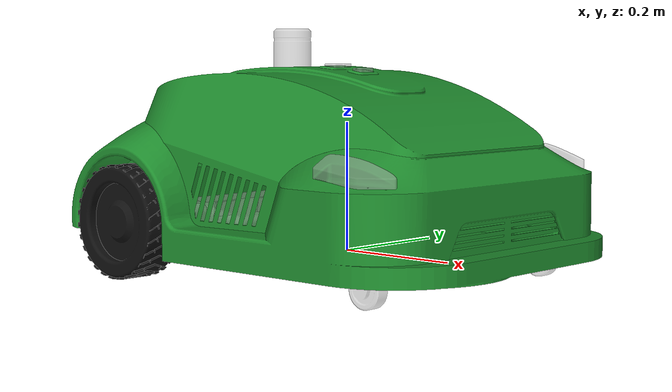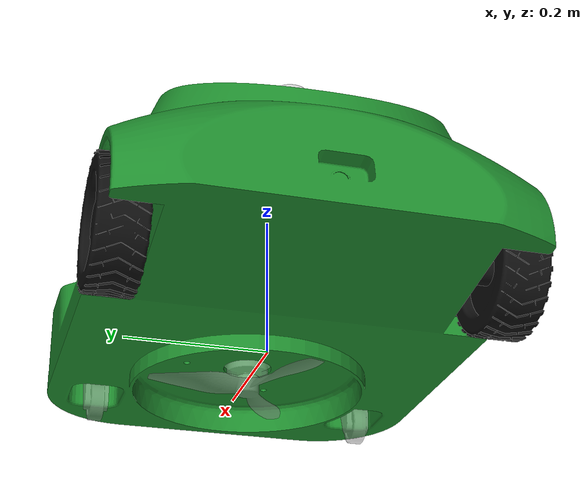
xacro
<?xml version="1.0" ?>
<robot name="Robotic" xmlns:xacro="http://www.ros.org/wiki/xacro">

<xacro:include filename="$(find lawnmover)/urdf/materials.xacro" />
<xacro:include filename="$(find lawnmover)/urdf/Robotic.ros2control" />
<xacro:include filename="$(find lawnmover)/urdf/Robotic.gazebo" />

<link name="base_footprint"/>

<!-- Align ROS forward (+X) with the physical front of the CAD model. -->
<joint name="base_footprint_to_base_link" type="fixed">
  <origin xyz="0 0 0" rpy="0 0 1.57079632679"/>
  <parent link="base_footprint"/>
  <child link="base_link"/>
</joint>

<link name="base_link">
  <inertial>
    <origin xyz="8.580581248920662e-06 -0.019542907387817107 0.03658552092693562" rpy="0 0 0"/>
    <mass value="34.93508217588316"/>
    <inertia ixx="1.904747" iyy="1.007743" izz="2.764873" ixy="5.3e-05" iyz="-0.091706" ixz="-2.9e-05"/>
  </inertial>
  <visual>
    <origin xyz="0 0 0" rpy="0 0 0"/>
    <geometry>
      <mesh filename="file://$(find lawnmover)/meshes/base_link.stl" scale="0.001 0.001 0.001"/>
    </geometry>
    <material name="chassis_green"/>
  </visual>
  <collision>
    <origin xyz="0 0 0" rpy="0 0 0"/>
    <geometry>
      <mesh filename="file://$(find lawnmover)/meshes/base_link.stl" scale="0.001 0.001 0.001"/>
    </geometry>
  </collision>
</link>

<link name="top_body_1">
  <inertial>
    <origin xyz="0.017654980692551753 0.30786706240030465 0.06037211225105721" rpy="0 0 0"/>
    <mass value="9.919977078705204"/>
    <inertia ixx="0.219339" iyy="0.194629" izz="0.363738" ixy="-0.0" iyz="-0.012416" ixz="0.0"/>
  </inertial>
  <visual>
    <origin xyz="0.017655 0.2665 -0.166281" rpy="0 0 0"/>
    <geometry>
      <mesh filename="file://$(find lawnmover)/meshes/top_body_1.stl" scale="0.001 0.001 0.001"/>
    </geometry>
    <material name="chassis_green"/>
  </visual>
  <collision>
    <origin xyz="0.017655 0.2665 -0.166281" rpy="0 0 0"/>
    <geometry>
      <mesh filename="file://$(find lawnmover)/meshes/top_body_1.stl" scale="0.001 0.001 0.001"/>
    </geometry>
  </collision>
</link>

<link name="motherboard_1">
  <inertial>
    <origin xyz="0.00018954971024159404 -0.04815671737909372 0.00182571346129895" rpy="0 0 0"/>
    <mass value="0.30547549443546346"/>
    <inertia ixx="0.000545" iyy="0.00015" izz="0.000694" ixy="-1e-06" iyz="-1e-06" ixz="-0.0"/>
  </inertial>
  <visual>
    <origin xyz="-0.000151 -0.041273 -0.198" rpy="0 0 0"/>
    <geometry>
      <mesh filename="file://$(find lawnmover)/meshes/motherboard_1.stl" scale="0.001 0.001 0.001"/>
    </geometry>
    <material name="silver"/>
  </visual>
  <collision>
    <origin xyz="-0.000151 -0.041273 -0.198" rpy="0 0 0"/>
    <geometry>
      <mesh filename="file://$(find lawnmover)/meshes/motherboard_1.stl" scale="0.001 0.001 0.001"/>
    </geometry>
  </collision>
</link>

<link name="imu_1">
  <inertial>
    <origin xyz="-2.2377820345726557e-17 -0.08499956692800073 0.00999999999999443" rpy="0 0 0"/>
    <mass value="0.32365124456773336"/>
    <inertia ixx="6.6e-05" iyy="6.6e-05" izz="0.000111" ixy="-0.0" iyz="0.0" ixz="-0.0"/>
  </inertial>
  <visual>
    <origin xyz="0.0 -0.205544 -0.198" rpy="0 0 0"/>
    <geometry>
      <mesh filename="file://$(find lawnmover)/meshes/imu_1.stl" scale="0.001 0.001 0.001"/>
    </geometry>
    <material name="silver"/>
  </visual>
  <collision>
    <origin xyz="0.0 -0.205544 -0.198" rpy="0 0 0"/>
    <geometry>
      <mesh filename="file://$(find lawnmover)/meshes/imu_1.stl" scale="0.001 0.001 0.001"/>
    </geometry>
  </collision>
</link>

<link name="electronic_board_cover_1">
  <inertial>
    <origin xyz="-8.390793912644897e-08 -0.15716523777900676 0.0010590757642855164" rpy="0 0 0"/>
    <mass value="2.0241142371386207"/>
    <inertia ixx="0.01662" iyy="0.00385" izz="0.020434" ixy="0.0" iyz="2e-05" ixz="-0.0"/>
  </inertial>
  <visual>
    <origin xyz="0.0 -0.209544 -0.195" rpy="0 0 0"/>
    <geometry>
      <mesh filename="file://$(find lawnmover)/meshes/electronic_board_cover_1.stl" scale="0.001 0.001 0.001"/>
    </geometry>
    <material name="silver"/>
  </visual>
  <collision>
    <origin xyz="0.0 -0.209544 -0.195" rpy="0 0 0"/>
    <geometry>
      <mesh filename="file://$(find lawnmover)/meshes/electronic_board_cover_1.stl" scale="0.001 0.001 0.001"/>
    </geometry>
  </collision>
</link>

<link name="switch_button_1">
  <inertial>
    <origin xyz="-5.556410329653242e-16 -0.012500000000032145 0.0071274180062225745" rpy="0 0 0"/>
    <mass value="0.19298374073034502"/>
    <inertia ixx="2.1e-05" iyy="4.2e-05" izz="4.4e-05" ixy="0.0" iyz="-0.0" ixz="-0.0"/>
  </inertial>
  <visual>
    <origin xyz="0.0 -0.0325 -0.270531" rpy="0 0 0"/>
    <geometry>
      <mesh filename="file://$(find lawnmover)/meshes/switch_button_1.stl" scale="0.001 0.001 0.001"/>
    </geometry>
    <material name="silver"/>
  </visual>
  <collision>
    <origin xyz="0.0 -0.0325 -0.270531" rpy="0 0 0"/>
    <geometry>
      <mesh filename="file://$(find lawnmover)/meshes/switch_button_1.stl" scale="0.001 0.001 0.001"/>
    </geometry>
  </collision>
</link>

<link name="emergency_stop_button_1">
  <inertial>
    <origin xyz="-1.1547058025862643e-15 -0.010000000000033142 0.0041020541199149885" rpy="0 0 0"/>
    <mass value="0.09548088941801776"/>
    <inertia ixx="7e-06" iyy="1.3e-05" izz="1.4e-05" ixy="-0.0" iyz="0.0" ixz="-0.0"/>
  </inertial>
  <visual>
    <origin xyz="0.0 0.0225 -0.270531" rpy="0 0 0"/>
    <geometry>
      <mesh filename="file://$(find lawnmover)/meshes/emergency_stop_button_1.stl" scale="0.001 0.001 0.001"/>
    </geometry>
    <material name="silver"/>
  </visual>
  <collision>
    <origin xyz="0.0 0.0225 -0.270531" rpy="0 0 0"/>
    <geometry>
      <mesh filename="file://$(find lawnmover)/meshes/emergency_stop_button_1.stl" scale="0.001 0.001 0.001"/>
    </geometry>
  </collision>
</link>

<link name="battery_1">
  <inertial>
    <origin xyz="1.3452806890719966e-16 -0.07721057389467109 0.007972698479452152" rpy="0 0 0"/>
    <mass value="10.0452810221613"/>
    <inertia ixx="0.019541" iyy="0.040964" izz="0.057089" ixy="0.0" iyz="-0.002631" ixz="-0.0"/>
  </inertial>
  <visual>
    <origin xyz="-0.0 -0.279116 -0.032315" rpy="0 0 0"/>
    <geometry>
      <mesh filename="file://$(find lawnmover)/meshes/battery_1.stl" scale="0.001 0.001 0.001"/>
    </geometry>
    <material name="silver"/>
  </visual>
  <collision>
    <origin xyz="-0.0 -0.279116 -0.032315" rpy="0 0 0"/>
    <geometry>
      <mesh filename="file://$(find lawnmover)/meshes/battery_1.stl" scale="0.001 0.001 0.001"/>
    </geometry>
  </collision>
</link>

<link name="rear_tyre_motor_1">
  <inertial>
    <origin xyz="0.04095050408351533 0.03540298157788521 0.032067539827467" rpy="0 0 0"/>
    <mass value="2.560524826080275"/>
    <inertia ixx="0.001763" iyy="0.00207" izz="0.002736" ixy="-0.0" iyz="-0.000109" ixz="2e-06"/>
  </inertial>
  <visual>
    <origin xyz="-0.1275 -0.188599 -0.01792" rpy="0 0 0"/>
    <geometry>
      <mesh filename="file://$(find lawnmover)/meshes/rear_tyre_motor_1.stl" scale="0.001 0.001 0.001"/>
    </geometry>
    <material name="silver"/>
  </visual>
  <collision>
    <origin xyz="-0.1275 -0.188599 -0.01792" rpy="0 0 0"/>
    <geometry>
      <mesh filename="file://$(find lawnmover)/meshes/rear_tyre_motor_1.stl" scale="0.001 0.001 0.001"/>
    </geometry>
  </collision>
</link>

<link name="rear_tyre_motor_2">
  <inertial>
    <origin xyz="-0.04095050408351539 -0.043604018422104096 0.019502539827468728" rpy="0 0 0"/>
    <mass value="2.560524826080275"/>
    <inertia ixx="0.001763" iyy="0.00207" izz="0.002736" ixy="0.0" iyz="-0.000109" ixz="-2e-06"/>
  </inertial>
  <visual>
    <origin xyz="0.1275 -0.267606 -0.030485" rpy="0 0 0"/>
    <geometry>
      <mesh filename="file://$(find lawnmover)/meshes/rear_tyre_motor_2.stl" scale="0.001 0.001 0.001"/>
    </geometry>
    <material name="silver"/>
  </visual>
  <collision>
    <origin xyz="0.1275 -0.267606 -0.030485" rpy="0 0 0"/>
    <geometry>
      <mesh filename="file://$(find lawnmover)/meshes/rear_tyre_motor_2.stl" scale="0.001 0.001 0.001"/>
    </geometry>
  </collision>
</link>

<link name="rear_tyre_1">
  <inertial>
    <origin xyz="0.04072419849369893 2.931116702131753e-08 5.5632352821688436e-09" rpy="0 0 0"/>
    <mass value="9.483268171490044"/>
    <inertia ixx="0.038711" iyy="0.021995" izz="0.021995" ixy="0.0" iyz="0.0" ixz="0.0"/>
  </inertial>
  <visual>
    <origin xyz="-0.2115 -0.224 -0.05" rpy="0 0 0"/>
    <geometry>
      <mesh filename="file://$(find lawnmover)/meshes/rear_tyre_1.stl" scale="0.001 0.001 0.001"/>
    </geometry>
    <material name="wheel_black"/>
  </visual>
  <collision>
    <origin xyz="-0.2115 -0.224 -0.05" rpy="0 0 0"/>
    <geometry>
      <mesh filename="file://$(find lawnmover)/meshes/rear_tyre_1.stl" scale="0.001 0.001 0.001"/>
    </geometry>
  </collision>
</link>

<link name="rear_tyre_2">
  <inertial>
    <origin xyz="-0.46372419849369895 -2.9590921740707543e-08 -3.8041371927532985e-09" rpy="0 0 0"/>
    <mass value="9.483268171490044"/>
    <inertia ixx="0.038711" iyy="0.021995" izz="0.021995" ixy="0.0" iyz="-0.0" ixz="0.0"/>
  </inertial>
  <visual>
    <origin xyz="0.2115 -0.224 -0.05" rpy="0 0 0"/>
    <geometry>
      <mesh filename="file://$(find lawnmover)/meshes/rear_tyre_2.stl" scale="0.001 0.001 0.001"/>
    </geometry>
    <material name="wheel_black"/>
  </visual>
  <collision>
    <origin xyz="0.2115 -0.224 -0.05" rpy="0 0 0"/>
    <geometry>
      <mesh filename="file://$(find lawnmover)/meshes/rear_tyre_2.stl" scale="0.001 0.001 0.001"/>
    </geometry>
  </collision>
</link>

<link name="front_tyre_1">
  <inertial>
    <origin xyz="4.163336342344337e-16 0.007185705204167586 -0.038621949502823105" rpy="0 0 0"/>
    <mass value="0.6297145300990463"/>
    <inertia ixx="0.000438" iyy="0.000377" izz="0.000187" ixy="0.0" iyz="4.7e-05" ixz="-0.0"/>
  </inertial>
  <visual>
    <origin xyz="-0.2025 0.234 -0.04" rpy="0 0 0"/>
    <geometry>
      <mesh filename="file://$(find lawnmover)/meshes/front_tyre_1.stl" scale="0.001 0.001 0.001"/>
    </geometry>
    <material name="silver"/>
  </visual>
  <collision>
    <origin xyz="-0.2025 0.234 -0.04" rpy="0 0 0"/>
    <geometry>
      <mesh filename="file://$(find lawnmover)/meshes/front_tyre_1.stl" scale="0.001 0.001 0.001"/>
    </geometry>
  </collision>
</link>

<link name="front_tyre_2">
  <inertial>
    <origin xyz="2.220446049250313e-16 0.007185705204167225 -0.0386219495028231" rpy="0 0 0"/>
    <mass value="0.6297145300990463"/>
    <inertia ixx="0.000438" iyy="0.000377" izz="0.000187" ixy="0.0" iyz="4.7e-05" ixz="-0.0"/>
  </inertial>
  <visual>
    <origin xyz="0.2025 0.234 -0.04" rpy="0 0 0"/>
    <geometry>
      <mesh filename="file://$(find lawnmover)/meshes/front_tyre_2.stl" scale="0.001 0.001 0.001"/>
    </geometry>
    <material name="silver"/>
  </visual>
  <collision>
    <origin xyz="0.2025 0.234 -0.04" rpy="0 0 0"/>
    <geometry>
      <mesh filename="file://$(find lawnmover)/meshes/front_tyre_2.stl" scale="0.001 0.001 0.001"/>
    </geometry>
  </collision>
</link>

<link name="blade_motor_1">
  <inertial>
    <origin xyz="0.045000000809822006 -0.07794243924366638 0.05768845947562536" rpy="0 0 0"/>
    <mass value="10.659680269011584"/>
    <inertia ixx="0.030799" iyy="0.030799" izz="0.018905" ixy="0.0" iyz="-0.0" ixz="0.0"/>
  </inertial>
  <visual>
    <origin xyz="0.045 0.032058 -0.0245" rpy="0 0 0"/>
    <geometry>
      <mesh filename="file://$(find lawnmover)/meshes/blade_motor_1.stl" scale="0.001 0.001 0.001"/>
    </geometry>
    <material name="silver"/>
  </visual>
  <collision>
    <origin xyz="0.045 0.032058 -0.0245" rpy="0 0 0"/>
    <geometry>
      <mesh filename="file://$(find lawnmover)/meshes/blade_motor_1.stl" scale="0.001 0.001 0.001"/>
    </geometry>
  </collision>
</link>

<link name="blade_1">
  <inertial>
    <origin xyz="-3.691323145453111e-08 1.1276890937716999e-07 0.0036574437329575035" rpy="0 0 0"/>
    <mass value="0.8089249216665014"/>
    <inertia ixx="0.002255" iyy="0.002255" izz="0.004474" ixy="0.0" iyz="0.0" ixz="-0.0"/>
  </inertial>
  <visual>
    <origin xyz="-0.0 0.11 0.0125" rpy="0 0 0"/>
    <geometry>
      <mesh filename="file://$(find lawnmover)/meshes/blade_1.stl" scale="0.001 0.001 0.001"/>
    </geometry>
    <material name="silver"/>
  </visual>
  <collision>
    <origin xyz="-0.0 0.11 0.0125" rpy="0 0 0"/>
    <geometry>
      <mesh filename="file://$(find lawnmover)/meshes/blade_1.stl" scale="0.001 0.001 0.001"/>
    </geometry>
  </collision>
</link>

<link name="odometer_1">
  <inertial>
    <origin xyz="0.007217520525320237 0.021291903054299288 0.007587551264943482" rpy="0 0 0"/>
    <mass value="0.05709594931006652"/>
    <inertia ixx="1.1e-05" iyy="3e-06" izz="1.1e-05" ixy="1e-06" iyz="0.0" ixz="-0.0"/>
  </inertial>
  <visual>
    <origin xyz="-0.227951 0.246486 -0.13" rpy="0 0 0"/>
    <geometry>
      <mesh filename="file://$(find lawnmover)/meshes/odometer_1.stl" scale="0.001 0.001 0.001"/>
    </geometry>
    <material name="silver"/>
  </visual>
  <collision>
    <origin xyz="-0.227951 0.246486 -0.13" rpy="0 0 0"/>
    <geometry>
      <mesh filename="file://$(find lawnmover)/meshes/odometer_1.stl" scale="0.001 0.001 0.001"/>
    </geometry>
  </collision>
</link>

<link name="odometer_2">
  <inertial>
    <origin xyz="0.010737113090464656 0.01975324377022028 0.007587551264943482" rpy="0 0 0"/>
    <mass value="0.05709594931006652"/>
    <inertia ixx="1.1e-05" iyy="3e-06" izz="1.1e-05" ixy="-1e-06" iyz="0.0" ixz="0.0"/>
  </inertial>
  <visual>
    <origin xyz="0.245886 0.244958 -0.13" rpy="0 0 0"/>
    <geometry>
      <mesh filename="file://$(find lawnmover)/meshes/odometer_2.stl" scale="0.001 0.001 0.001"/>
    </geometry>
    <material name="silver"/>
  </visual>
  <collision>
    <origin xyz="0.245886 0.244958 -0.13" rpy="0 0 0"/>
    <geometry>
      <mesh filename="file://$(find lawnmover)/meshes/odometer_2.stl" scale="0.001 0.001 0.001"/>
    </geometry>
  </collision>
</link>

<link name="odometer_cover_left_1">
  <inertial>
    <origin xyz="-0.0012109615756692171 -0.05130716466293511 0.013753515252000331" rpy="0 0 0"/>
    <mass value="0.0974690142224969"/>
    <inertia ixx="0.000144" iyy="3.3e-05" izz="0.000155" ixy="-4e-06" iyz="-9e-06" ixz="3e-06"/>
  </inertial>
  <visual>
    <origin xyz="-0.230379 0.164 -0.135" rpy="0 0 0"/>
    <geometry>
      <mesh filename="file://$(find lawnmover)/meshes/odometer_cover_left_1.stl" scale="0.001 0.001 0.001"/>
    </geometry>
    <material name="silver"/>
  </visual>
  <collision>
    <origin xyz="-0.230379 0.164 -0.135" rpy="0 0 0"/>
    <geometry>
      <mesh filename="file://$(find lawnmover)/meshes/odometer_cover_left_1.stl" scale="0.001 0.001 0.001"/>
    </geometry>
  </collision>
</link>

<link name="odometer_cover_right_1">
  <inertial>
    <origin xyz="0.0012109615756695502 -0.05130716466293639 0.013753515252000165" rpy="0 0 0"/>
    <mass value="0.09746901422249486"/>
    <inertia ixx="0.000144" iyy="3.3e-05" izz="0.000155" ixy="4e-06" iyz="-9e-06" ixz="-3e-06"/>
  </inertial>
  <visual>
    <origin xyz="0.230379 0.164 -0.135" rpy="0 0 0"/>
    <geometry>
      <mesh filename="file://$(find lawnmover)/meshes/odometer_cover_right_1.stl" scale="0.001 0.001 0.001"/>
    </geometry>
    <material name="silver"/>
  </visual>
  <collision>
    <origin xyz="0.230379 0.164 -0.135" rpy="0 0 0"/>
    <geometry>
      <mesh filename="file://$(find lawnmover)/meshes/odometer_cover_right_1.stl" scale="0.001 0.001 0.001"/>
    </geometry>
  </collision>
</link>

<link name="LiDAR_1">
  <inertial>
    <origin xyz="-0.026000000000035647 0.025999999999967827 0.030737618109065556" rpy="0 0 0"/>
    <mass value="1.910203205712103"/>
    <inertia ixx="0.001649" iyy="0.001649" izz="0.000894" ixy="0.0" iyz="-0.0" ixz="0.0"/>
  </inertial>
  <visual>
    <origin xyz="-0.026 -0.094 -0.270531" rpy="0 0 0"/>
    <geometry>
      <mesh filename="file://$(find lawnmover)/meshes/LiDAR_1.stl" scale="0.001 0.001 0.001"/>
    </geometry>
    <material name="silver"/>
  </visual>
  <collision>
    <origin xyz="-0.026 -0.094 -0.270531" rpy="0 0 0"/>
    <geometry>
      <mesh filename="file://$(find lawnmover)/meshes/LiDAR_1.stl" scale="0.001 0.001 0.001"/>
    </geometry>
  </collision>
</link>

<joint name="Rigid 1" type="fixed">
  <origin xyz="-0.017655 -0.2665 0.166281" rpy="0 0 0"/>
  <parent link="base_link"/>
  <child link="top_body_1"/>
</joint>

<joint name="Rigid 2" type="fixed">
  <origin xyz="0.000151 -0.168271 0.003" rpy="0 0 0"/>
  <parent link="electronic_board_cover_1"/>
  <child link="motherboard_1"/>
</joint>

<joint name="Rigid 3" type="fixed">
  <origin xyz="0.0 -0.004 0.003" rpy="0 0 0"/>
  <parent link="electronic_board_cover_1"/>
  <child link="imu_1"/>
</joint>

<joint name="Rigid 4" type="fixed">
  <origin xyz="0.017655 0.476044 0.028719" rpy="0 0 0"/>
  <parent link="top_body_1"/>
  <child link="electronic_board_cover_1"/>
</joint>

<joint name="Rigid 6" type="fixed">
  <origin xyz="0.017655 0.299 0.10425" rpy="0 0 0"/>
  <parent link="top_body_1"/>
  <child link="switch_button_1"/>
</joint>

<joint name="Rigid 7" type="fixed">
  <origin xyz="0.017655 0.244 0.10425" rpy="0 0 0"/>
  <parent link="top_body_1"/>
  <child link="emergency_stop_button_1"/>
</joint>

<joint name="Rigid 8" type="fixed">
  <origin xyz="0.0 0.279116 0.032315" rpy="0 0 0"/>
  <parent link="base_link"/>
  <child link="battery_1"/>
</joint>

<joint name="Rigid 9" type="fixed">
  <origin xyz="0.1275 0.188599 0.01792" rpy="0 0 0"/>
  <parent link="base_link"/>
  <child link="rear_tyre_motor_1"/>
</joint>

<joint name="Rigid 10" type="fixed">
  <origin xyz="-0.1275 0.267606 0.030485" rpy="0 0 0"/>
  <parent link="base_link"/>
  <child link="rear_tyre_motor_2"/>
</joint>

<joint name="rear_left_wheel_joint" type="continuous">
  <origin xyz="0.084 0.035401 0.03208" rpy="0 0 0"/>
  <parent link="rear_tyre_motor_1"/>
  <child link="rear_tyre_1"/>
<axis xyz="1 0 0"/>
</joint>

<joint name="rear_right_wheel_joint" type="continuous">
  <origin xyz="-0.084 -0.043606 0.019515" rpy="0 0 0"/>
  <parent link="rear_tyre_motor_2"/>
  <child link="rear_tyre_2"/>
<axis xyz="1 0 0"/>
</joint>

<joint name="front_left_wheel_joint" type="continuous">
  <origin xyz="0.2025 -0.234 0.04" rpy="0 0 0"/>
  <parent link="base_link"/>
  <child link="front_tyre_1"/>
  <axis xyz="1 0 0"/>
</joint>

<joint name="front_right_wheel_joint" type="continuous">
  <origin xyz="-0.2025 -0.234 0.04" rpy="0 0 0"/>
  <parent link="base_link"/>
  <child link="front_tyre_2"/>
  <axis xyz="1 0 0"/>
</joint>

<joint name="Rigid 15" type="fixed">
  <origin xyz="-0.045 -0.032058 0.0245" rpy="0 0 0"/>
  <parent link="base_link"/>
  <child link="blade_motor_1"/>
</joint>

<joint name="blade_joint" type="continuous">
  <origin xyz="0.045 -0.077942 -0.037" rpy="0 0 0"/>
  <parent link="blade_motor_1"/>
  <child link="blade_1"/>
<axis xyz="0 0 1"/>
</joint>

<joint name="Rigid 17" type="fixed">
  <origin xyz="0.227951 -0.246486 0.13" rpy="0 0 0"/>
  <parent link="base_link"/>
  <child link="odometer_1"/>
</joint>

<joint name="Rigid 18" type="fixed">
  <origin xyz="-0.245886 -0.244958 0.13" rpy="0 0 0"/>
  <parent link="base_link"/>
  <child link="odometer_2"/>
</joint>

<joint name="Rigid 19" type="fixed">
  <origin xyz="0.230379 -0.164 0.135" rpy="0 0 0"/>
  <parent link="base_link"/>
  <child link="odometer_cover_left_1"/>
</joint>

<joint name="Rigid 20" type="fixed">
  <origin xyz="-0.230379 -0.164 0.135" rpy="0 0 0"/>
  <parent link="base_link"/>
  <child link="odometer_cover_right_1"/>
</joint>

<joint name="Rigid 21" type="fixed">
  <origin xyz="0.043655 0.3605 0.10425" rpy="0 0 0"/>
  <parent link="top_body_1"/>
  <child link="LiDAR_1"/>
</joint>

</robot>

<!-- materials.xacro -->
<robot name="Robotic" xmlns:xacro="http://www.ros.org/wiki/xacro" >

<material name="silver">
  <color rgba="0.700 0.700 0.700 0.500"/>
</material>

<material name="chassis_green">
  <color rgba="0.120 0.550 0.180 1.000"/>
</material>

<material name="wheel_black">
  <color rgba="0.060 0.060 0.060 1.000"/>
</material>

</robot>
